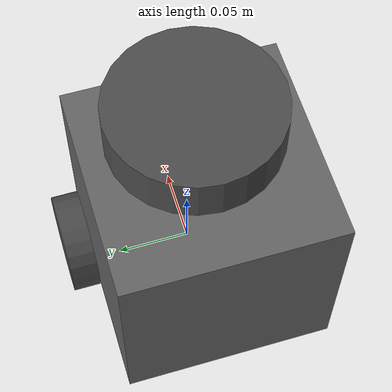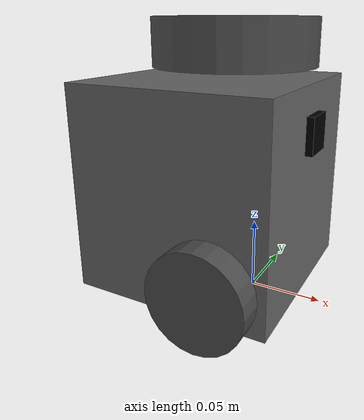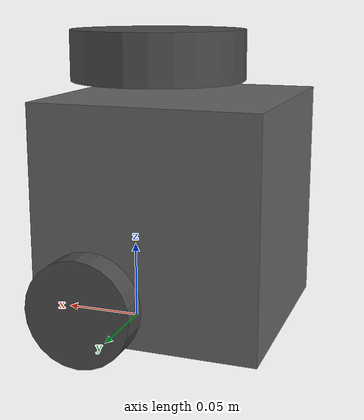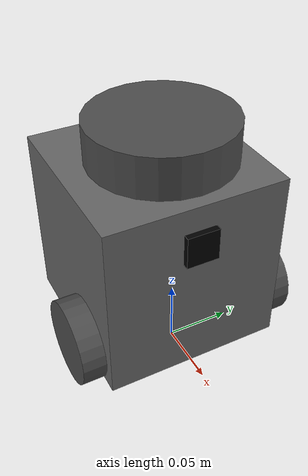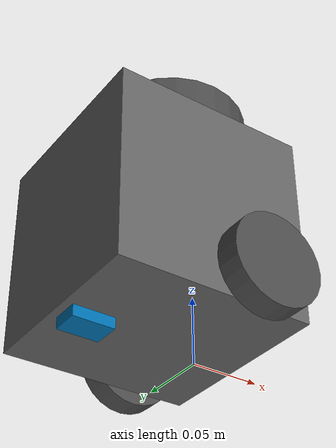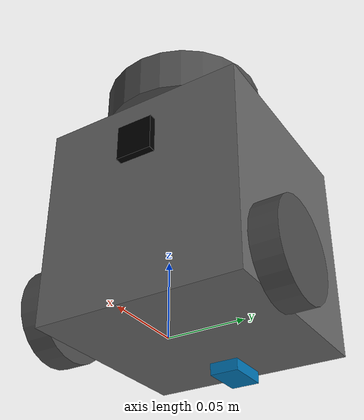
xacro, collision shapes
<?xml version="1.0" ?>
<robot name="turtlebot3_burger" xmlns:xacro="http://ros.org/wiki/xacro">

  <xacro:arg name="namespace" default="" />
  <!-- Init colour -->
  <material name="black">
      <color rgba="0.0 0.0 0.0 1.0"/>
  </material>

  <material name="dark">
    <color rgba="0.3 0.3 0.3 1.0"/>
  </material>

  <material name="light_black">
    <color rgba="0.4 0.4 0.4 1.0"/>
  </material>

  <material name="blue">
    <color rgba="0.0 0.0 0.8 1.0"/>
  </material>

  <material name="green">
    <color rgba="0.0 0.8 0.0 1.0"/>
  </material>

  <material name="grey">
    <color rgba="0.5 0.5 0.5 1.0"/>
  </material>

  <material name="orange">
    <color rgba="1.0 0.4235 0.0392 1.0"/>
  </material>

  <material name="brown">
    <color rgba="0.8706 0.8118 0.7647 1.0"/>
  </material>

  <material name="red">
    <color rgba="0.8 0.0 0.0 1.0"/>
  </material>

  <material name="white">
    <color rgba="1.0 1.0 1.0 1.0"/>
  </material>

  <link name="base_footprint"/>

  <joint name="base_joint" type="fixed">
    <parent link="base_footprint"/>
    <child link="base_link"/>
    <origin xyz="0.0 0.0 0.010" rpy="0 0 0"/>
  </joint>

  <link name="base_link">
    <visual>
      <origin xyz="-0.032 0 0.0" rpy="0 0 0"/>
      <geometry>
        <mesh filename="package://turtlebot3_burger_description/meshes/bases/burger_base.stl" scale="0.001 0.001 0.001"/>
      </geometry>
      <material name="light_black"/>
    </visual>

    <collision>
      <origin xyz="-0.032 0 0.070" rpy="0 0 0"/>
      <geometry>
        <box size="0.140 0.140 0.143"/>
      </geometry>
    </collision>

    <inertial>
      <origin xyz="0 0 0" rpy="0 0 0"/>
      <mass value="8.2573504e-01"/>
      <inertia ixx="2.2124416e-03" ixy="-1.2294101e-05" ixz="3.4938785e-05" iyy="2.1193702e-03" iyz="-5.0120904e-06" izz="2.0064271e-03" />
    </inertial>
  </link>

  <joint name="wheel_left_joint" type="continuous">
    <parent link="base_link"/>
    <child link="wheel_left_link"/>
    <origin xyz="0.0 0.08 0.023" rpy="-1.57 0 0"/>
    <axis xyz="0 0 1"/>
    <limit effort="100" velocity="1.0"/>
  </joint>

  <link name="wheel_left_link">
    <visual>
      <origin xyz="0 0 0" rpy="1.57 0 0"/>
      <geometry>
        <mesh filename="package://turtlebot3_burger_description/meshes/wheels/left_tire.stl" scale="0.001 0.001 0.001"/>
      </geometry>
      <material name="dark"/>
    </visual>

    <collision>
      <origin xyz="0 0 0" rpy="0 0 0"/>
      <geometry>
        <cylinder length="0.018" radius="0.033"/>
      </geometry>
    </collision>

    <inertial>
      <origin xyz="0 0 0" />
      <mass value="2.8498940e-02" />
      <inertia ixx="1.1175580e-05" ixy="-4.2369783e-11" ixz="-5.9381719e-09" iyy="1.1192413e-05" iyz="-1.4400107e-11" izz="2.0712558e-05" />
    </inertial>
  </link>

  <joint name="wheel_right_joint" type="continuous">
    <parent link="base_link"/>
    <child link="wheel_right_link"/>
    <origin xyz="0.0 -0.080 0.023" rpy="-1.57 0 0"/>
    <axis xyz="0 0 1"/>
    <limit effort="100" velocity="1.0"/>
  </joint>

  <link name="wheel_right_link">
    <visual>
      <origin xyz="0 0 0" rpy="1.57 0 0"/>
      <geometry>
        <mesh filename="package://turtlebot3_burger_description/meshes/wheels/right_tire.stl" scale="0.001 0.001 0.001"/>
      </geometry>
      <material name="dark"/>
    </visual>

    <collision>
      <origin xyz="0 0 0" rpy="0 0 0"/>
      <geometry>
        <cylinder length="0.018" radius="0.033"/>
      </geometry>
    </collision>

    <inertial>
      <origin xyz="0 0 0" />
      <mass value="2.8498940e-02" />
      <inertia ixx="1.1175580e-05" ixy="-4.2369783e-11" ixz="-5.9381719e-09" iyy="1.1192413e-05" iyz="-1.4400107e-11" izz="2.0712558e-05" />
    </inertial>
  </link>

  <joint name="caster_back_joint" type="fixed">
    <parent link="base_link"/>
    <child link="caster_back_link"/>
    <origin xyz="-0.081 0 -0.004" rpy="-1.57 0 0"/>
  </joint>

  <link name="caster_back_link">
    <collision>
      <origin xyz="0 0.001 0" rpy="0 0 0"/>
      <geometry>
        <box size="0.030 0.009 0.020"/>
      </geometry>
    </collision>

    <inertial>
      <origin xyz="0 0 0" />
      <mass value="0.005" />
      <inertia ixx="0.001" ixy="0.0" ixz="0.0" iyy="0.001" iyz="0.0" izz="0.001" />
    </inertial>
  </link>

  <joint name="imu_joint" type="fixed">
    <parent link="base_link"/>
    <child link="imu_link"/>
    <origin xyz="-0.032 0 0.068" rpy="0 0 0"/>
  </joint>

  <link name="imu_link"/>

  <joint name="scan_joint" type="fixed">
    <parent link="base_link"/>
    <child link="base_scan"/>
    <origin xyz="-0.032 0 0.172" rpy="0 0 0"/>
  </joint>

  <link name="base_scan">
    <visual>
      <origin xyz="0 0 0.0" rpy="0 0 0"/>
      <geometry>
        <mesh filename="package://turtlebot3_burger_description/meshes/sensors/lds.stl" scale="0.001 0.001 0.001"/>
      </geometry>
      <material name="dark"/>
    </visual>

    <collision>
      <origin xyz="0.015 0 -0.0065" rpy="0 0 0"/>
      <geometry>
        <cylinder length="0.0315" radius="0.055"/>
      </geometry>
    </collision>

    <inertial>
      <mass value="0.114" />
      <origin xyz="0 0 0" />
      <inertia ixx="0.001" ixy="0.0" ixz="0.0" iyy="0.001" iyz="0.0" izz="0.001" />
    </inertial>
  </link>

   <joint name="camera_joint" type="fixed">
        <parent link="base_link"/>
        <child link="camera_link"/>
        <origin xyz="0.038 0 0.11" rpy="0 0 0"/>
    </joint>

    <link name="camera_link">
        <visual>
        <origin xyz="0 0 0.0" rpy="0 0 0"/>
            <geometry>
                <box size="0.010 0.025 0.025"/>
            </geometry>
            <material name="black"/>
        </visual>
        <collision>
        <origin xyz="0 0 0.0" rpy="0 0 0"/>
            <geometry>
                <box size="0.010 0.025 0.025"/>
            </geometry>
            <material name="black"/>
        </collision>
    </link>

    <joint name="camera_optical_joint" type="fixed">
        <parent link="camera_link"/>
        <child link="camera_link_optical"/>
        <origin xyz="0 0 0" rpy="0 0 0"/>
    </joint>

    <link name="camera_link_optical"></link>

    <gazebo reference="camera_link">

        <sensor name="burger_camera" type="camera">
        <always_on>true</always_on>
            <pose> 0 0 0 0 0 0 </pose>
            <visualize>true</visualize>
            <update_rate>10</update_rate>
            <ignition_frame_id>camera_link</ignition_frame_id>
            <camera>
                <camera_info_topic>burger_camera/camera_info</camera_info_topic>
                <horizontal_fov>1.089</horizontal_fov>
                <image>
                    <format>R8G8B8</format>
                    <width>640</width>
                    <height>480</height>
                </image>
                <clip>
                    <near>0.05</near>
                    <far>8.0</far>
                </clip>
                <noise>
                    <type>gaussian</type>
                    <mean>0.0</mean>
                    <stddev>0.007</stddev>
                </noise>
            </camera>
            <topic>burger_camera/image_raw</topic>
            <gz_frame_id>camera_link_optical</gz_frame_id>
        </sensor>
    </gazebo>

  <gazebo>
    <plugin filename="ignition-gazebo-diff-drive-system" name="ignition::gazebo::systems::DiffDrive">

        <left_joint>wheel_left_joint</left_joint>
        <right_joint>wheel_right_joint</right_joint>

        <wheel_separation>0.16</wheel_separation>
        <wheel_radius>0.033</wheel_radius>

        <max_velocity>3.0</max_velocity>
        <max_linear_acceleration>1</max_linear_acceleration>
        <min_linear_acceleration>-1</min_linear_acceleration>
        <max_angular_acceleration>2</max_angular_acceleration>
        <min_angular_acceleration>-2</min_angular_acceleration>
        <max_linear_velocity>0.5</max_linear_velocity>
        <min_linear_velocity>-0.5</min_linear_velocity>
        <max_angular_velocity>1</max_angular_velocity>
        <min_angular_velocity>-1</min_angular_velocity>

        <topic>/burger/cmd_vel</topic>

        <odom_topic>odom</odom_topic>
        <tf_topic>tf</tf_topic>
        <frame_id>odom</frame_id>
        <child_frame_id>base_footprint</child_frame_id>
        <odom_publish_frequency>30</odom_publish_frequency>
    </plugin>

    <plugin name="ignition::gazebo::systems::OdometryPublisher" filename="ignition-gazebo-odometry-publisher-system">
      <odom_topic>odom</odom_topic>
      <odom_frame>odom</odom_frame>
      <robot_base_frame>base_footprint</robot_base_frame>
      <publish_tf>true</publish_tf>
      <tf_topic>tf</tf_topic>
      <odom_publish_frequency>30</odom_publish_frequency>
      <xyz_offset>0 0 0</xyz_offset>
      <rpy_offset>0 0 0</rpy_offset>
    </plugin>

    <plugin filename="ignition-gazebo-joint-state-publisher-system" name="ignition::gazebo::systems::JointStatePublisher">
        <update_rate>50</update_rate>
        <topic>joint_states</topic>
        <joint_name>wheel_left_joint</joint_name>
        <joint_name>wheel_right_joint</joint_name>
    </plugin>

  </gazebo>

  <gazebo reference="imu_link">
    <sensor name="imu" type="imu">
      <always_on>1</always_on>
      <update_rate>50</update_rate>
      <visualize>true</visualize>
      <topic>burger/imu</topic>
      <ignition_frame_id>imu_link</ignition_frame_id>
      <enable_metrics>true</enable_metrics>

        <imu>
          <angular_velocity>
            <x>
              <noise type="gaussian">
                <mean>0.0</mean>
                <stddev>2e-4</stddev>
              </noise>
            </x>
            <y>
              <noise type="gaussian">
                <mean>0.0</mean>
                <stddev>2e-4</stddev>
              </noise>
            </y>
            <z>
              <noise type="gaussian">
                <mean>0.0</mean>
                <stddev>2e-4</stddev>
              </noise>
            </z>
          </angular_velocity>
          <linear_acceleration>
            <x>
              <noise type="gaussian">
                <mean>0.0</mean>
                <stddev>1.7e-2</stddev>
              </noise>
            </x>
            <y>
              <noise type="gaussian">
                <mean>0.0</mean>
                <stddev>1.7e-2</stddev>
              </noise>
            </y>
            <z>
              <noise type="gaussian">
                <mean>0.0</mean>
                <stddev>1.7e-2</stddev>
              </noise>
            </z>
          </linear_acceleration>
        </imu>

    </sensor>
  </gazebo>

   <gazebo>

      <plugin filename="ignition-gazebo-sensors-system" name="ignition::gazebo::systems::Sensors">
        <render_engine>ogre2</render_engine>
      </plugin>

    </gazebo>

	<gazebo reference="base_link">
	  <selfCollide>false</selfCollide>
      <mu1 value="0.5" />
      <mu2 value="0.5" />
  </gazebo>

 	<gazebo reference="wheel_left_link">
	  <selfCollide>false</selfCollide>
      <mu1 value="1.0" />
      <mu2 value="0.8" />
  </gazebo>

 	<gazebo reference="wheel_right_link">
	  <selfCollide>false</selfCollide>
      <mu1 value="1.0" />
      <mu2 value="0.8" />
  </gazebo>

 	<gazebo reference="caster_back_link">
	  <selfCollide>false</selfCollide>
      <mu1 value="0.1" />
      <mu2 value="0.1" />
  </gazebo>

<gazebo reference="base_scan" >
  <sensor name="gpu_lidar" type="gpu_lidar">
    <gz_frame_id>base_scan</gz_frame_id>
    <topic>burger/scan</topic>
    <ignition_frame_id>base_scan</ignition_frame_id>
    <update_rate>30</update_rate>
    <ray>
      <scan>
        <horizontal>
          <samples>360</samples>
          <resolution>1</resolution>
          <min_angle>-3.14</min_angle>
          <max_angle>3.14</max_angle>
        </horizontal>
        <vertical>
          <samples>1</samples>
          <resolution>0.1</resolution>
          <min_angle>0.0</min_angle>
          <max_angle>0.0</max_angle>
        </vertical>
      </scan>
      <range>
        <min>0.2</min>
        <max>30.0</max>
        <resolution>0.01</resolution>
      </range>

          <noise>
            <type>gaussian</type>
            <mean>0.0</mean>
            <stddev>0.01</stddev>
          </noise>
      </ray>
    <alwaysOn>true</alwaysOn>
    <visualize>true</visualize>
  </sensor>
</gazebo>

</robot>
